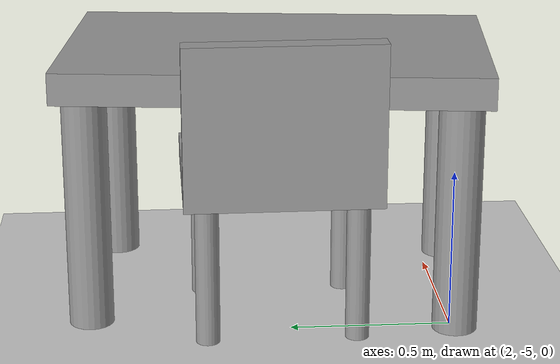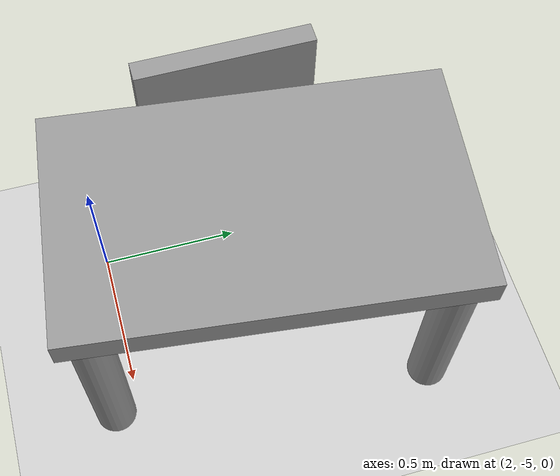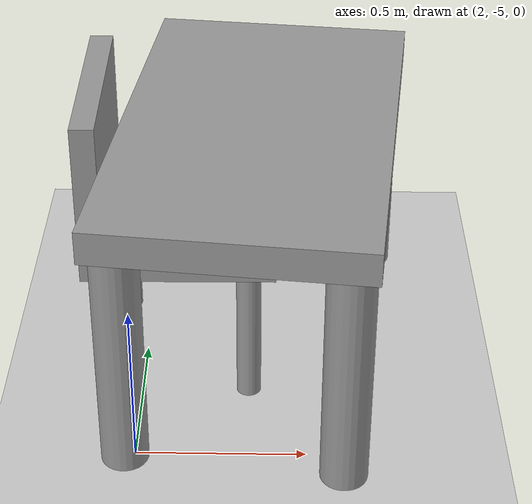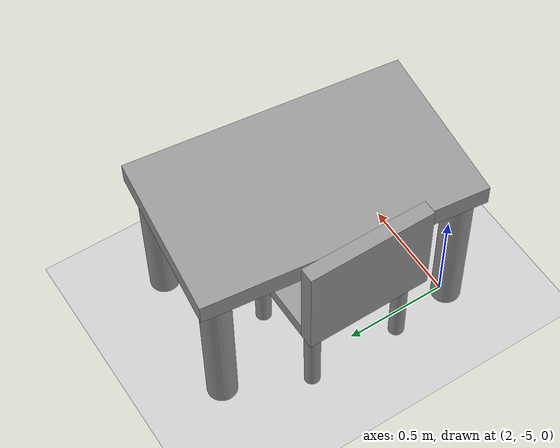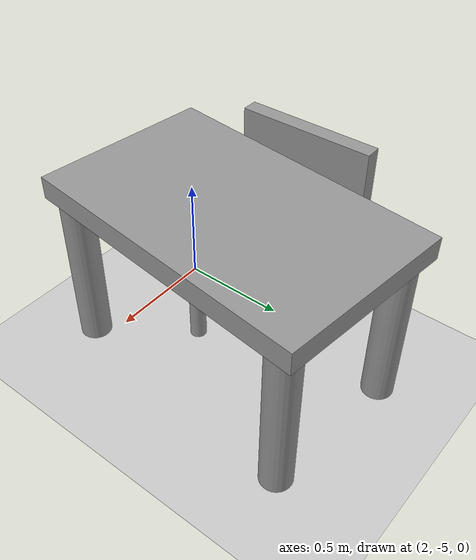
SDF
<sdf version="1.6">
 <world name="default">
  <model name="ground_plane">
   <static>1</static>
   <link name="link">
    <collision name="collision">
     <geometry><plane><normal>0 0 1</normal><size>100 100</size></plane></geometry>
     <surface>
      <contact><collide_bitmask>65535</collide_bitmask></contact>
      <friction><ode><mu>100</mu><mu2>50</mu2></ode></friction>
     </surface>
    </collision>
    <visual name="visual">
     <cast_shadows>0</cast_shadows>
     <geometry><plane><normal>0 0 1</normal><size>100 100</size></plane></geometry>
     <material>
      <script><uri>file://media/materials/scripts/gazebo.material</uri><name>Gazebo/Grey</name></script>
     </material>
    </visual>
   </link>
  </model>
  <model name="table">
   <link name="link_0">
    <inertial>
     <mass>1</mass>
     <inertia>
      <ixx>0.166667</ixx>
      <ixy>0</ixy>
      <ixz>0</ixz>
      <iyy>0.166667</iyy>
      <iyz>0</iyz>
      <izz>0.166667</izz>
     </inertia>
    </inertial>
    <pose>0 0 0.332 0 -0 0</pose>
    <visual name="visual">
     <geometry><box><size>0.8 1.33 0.1</size></box></geometry>
     <material>
      <lighting>1</lighting>
      <script><uri>file://media/materials/scripts/gazebo.material</uri><name>Gazebo/Grey</name></script>
      <shader type="pixel"><normal_map>__default__</normal_map></shader>
      <ambient>0.3 0.3 0.3 1</ambient>
      <diffuse>0.7 0.7 0.7 1</diffuse>
      <specular>0.01 0.01 0.01 1</specular>
      <emissive>0 0 0 1</emissive>
     </material>
    </visual>
    <collision name="collision">
     <geometry><box><size>0.8 1.33 0.1</size></box></geometry>
     <surface>
      <friction>
       <ode><mu>1</mu><mu2>1</mu2><fdir1>0 0 0</fdir1><slip1>0</slip1><slip2>0</slip2></ode>
       <torsional>
        <coefficient>1</coefficient>
        <patch_radius>0</patch_radius>
        <surface_radius>0</surface_radius>
        <use_patch_radius>1</use_patch_radius>
        <ode><slip>0</slip></ode>
       </torsional>
      </friction>
      <bounce><restitution_coefficient>0</restitution_coefficient><threshold>1e+06</threshold></bounce>
      <contact>
       <collide_without_contact>0</collide_without_contact>
       <collide_without_contact_bitmask>1</collide_without_contact_bitmask>
       <collide_bitmask>1</collide_bitmask>
       <ode>
        <soft_cfm>0</soft_cfm>
        <soft_erp>0.2</soft_erp>
        <kp>1e+13</kp>
        <kd>1</kd>
        <max_vel>0.01</max_vel>
        <min_depth>0</min_depth>
       </ode>
       <bullet>
        <split_impulse>1</split_impulse>
        <split_impulse_penetration_threshold>-0.01</split_impulse_penetration_threshold>
        <soft_cfm>0</soft_cfm>
        <soft_erp>0.2</soft_erp>
        <kp>1e+13</kp>
        <kd>1</kd>
       </bullet>
      </contact>
     </surface>
    </collision>
   </link>
   <link name="link_1">
    <inertial>
     <mass>1</mass>
     <inertia><ixx>0.145833</ixx><ixy>0</ixy><ixz>0</ixz><iyy>0.145833</iyy><iyz>0</iyz><izz>0.125</izz></inertia>
    </inertial>
    <pose>-0.32 0.57 -0.083 0 -0 0</pose>
    <visual name="visual">
     <geometry><cylinder><radius>0.07</radius><length>0.73</length></cylinder></geometry>
     <material>
      <lighting>1</lighting>
      <script><uri>file://media/materials/scripts/gazebo.material</uri><name>Gazebo/Grey</name></script>
      <shader type="pixel"><normal_map>__default__</normal_map></shader>
      <ambient>0.3 0.3 0.3 1</ambient>
      <diffuse>0.7 0.7 0.7 1</diffuse>
      <specular>0.01 0.01 0.01 1</specular>
      <emissive>0 0 0 1</emissive>
     </material>
    </visual>
    <collision name="collision">
     <geometry><cylinder><radius>0.07</radius><length>0.73</length></cylinder></geometry>
     <surface>
      <friction>
       <ode><mu>1</mu><mu2>1</mu2><fdir1>0 0 0</fdir1><slip1>0</slip1><slip2>0</slip2></ode>
       <torsional>
        <coefficient>1</coefficient>
        <patch_radius>0</patch_radius>
        <surface_radius>0</surface_radius>
        <use_patch_radius>1</use_patch_radius>
        <ode><slip>0</slip></ode>
       </torsional>
      </friction>
      <bounce><restitution_coefficient>0</restitution_coefficient><threshold>1e+06</threshold></bounce>
      <contact>
       <collide_without_contact>0</collide_without_contact>
       <collide_without_contact_bitmask>1</collide_without_contact_bitmask>
       <collide_bitmask>1</collide_bitmask>
       <ode>
        <soft_cfm>0</soft_cfm>
        <soft_erp>0.2</soft_erp>
        <kp>1e+13</kp>
        <kd>1</kd>
        <max_vel>0.01</max_vel>
        <min_depth>0</min_depth>
       </ode>
       <bullet>
        <split_impulse>1</split_impulse>
        <split_impulse_penetration_threshold>-0.01</split_impulse_penetration_threshold>
        <soft_cfm>0</soft_cfm>
        <soft_erp>0.2</soft_erp>
        <kp>1e+13</kp>
        <kd>1</kd>
       </bullet>
      </contact>
     </surface>
    </collision>
   </link>
   <link name="link_1_clone">
    <inertial>
     <mass>1</mass>
     <inertia><ixx>0.145833</ixx><ixy>0</ixy><ixz>0</ixz><iyy>0.145833</iyy><iyz>0</iyz><izz>0.125</izz></inertia>
    </inertial>
    <pose>-0.32 -0.57 -0.083 0 -0 0</pose>
    <visual name="visual">
     <geometry><cylinder><radius>0.07</radius><length>0.73</length></cylinder></geometry>
     <material>
      <lighting>1</lighting>
      <script><uri>file://media/materials/scripts/gazebo.material</uri><name>Gazebo/Grey</name></script>
      <shader type="pixel"><normal_map>__default__</normal_map></shader>
      <ambient>0.3 0.3 0.3 1</ambient>
      <diffuse>0.7 0.7 0.7 1</diffuse>
      <specular>0.01 0.01 0.01 1</specular>
      <emissive>0 0 0 1</emissive>
     </material>
    </visual>
    <collision name="collision">
     <geometry><cylinder><radius>0.07</radius><length>0.73</length></cylinder></geometry>
     <surface>
      <friction>
       <ode><mu>1</mu><mu2>1</mu2><fdir1>0 0 0</fdir1><slip1>0</slip1><slip2>0</slip2></ode>
       <torsional>
        <coefficient>1</coefficient>
        <patch_radius>0</patch_radius>
        <surface_radius>0</surface_radius>
        <use_patch_radius>1</use_patch_radius>
        <ode><slip>0</slip></ode>
       </torsional>
      </friction>
      <bounce><restitution_coefficient>0</restitution_coefficient><threshold>1e+06</threshold></bounce>
      <contact>
       <collide_without_contact>0</collide_without_contact>
       <collide_without_contact_bitmask>1</collide_without_contact_bitmask>
       <collide_bitmask>1</collide_bitmask>
       <ode>
        <soft_cfm>0</soft_cfm>
        <soft_erp>0.2</soft_erp>
        <kp>1e+13</kp>
        <kd>1</kd>
        <max_vel>0.01</max_vel>
        <min_depth>0</min_depth>
       </ode>
       <bullet>
        <split_impulse>1</split_impulse>
        <split_impulse_penetration_threshold>-0.01</split_impulse_penetration_threshold>
        <soft_cfm>0</soft_cfm>
        <soft_erp>0.2</soft_erp>
        <kp>1e+13</kp>
        <kd>1</kd>
       </bullet>
      </contact>
     </surface>
    </collision>
   </link>
   <link name="link_1_clone_0">
    <inertial>
     <mass>1</mass>
     <inertia><ixx>0.145833</ixx><ixy>0</ixy><ixz>0</ixz><iyy>0.145833</iyy><iyz>0</iyz><izz>0.125</izz></inertia>
    </inertial>
    <pose>0.32 0.57 -0.083 0 -0 0</pose>
    <visual name="visual">
     <geometry><cylinder><radius>0.07</radius><length>0.73</length></cylinder></geometry>
     <material>
      <lighting>1</lighting>
      <script><uri>file://media/materials/scripts/gazebo.material</uri><name>Gazebo/Grey</name></script>
      <shader type="pixel"><normal_map>__default__</normal_map></shader>
      <ambient>0.3 0.3 0.3 1</ambient>
      <diffuse>0.7 0.7 0.7 1</diffuse>
      <specular>0.01 0.01 0.01 1</specular>
      <emissive>0 0 0 1</emissive>
     </material>
    </visual>
    <collision name="collision">
     <geometry><cylinder><radius>0.07</radius><length>0.73</length></cylinder></geometry>
     <surface>
      <friction>
       <ode><mu>1</mu><mu2>1</mu2><fdir1>0 0 0</fdir1><slip1>0</slip1><slip2>0</slip2></ode>
       <torsional>
        <coefficient>1</coefficient>
        <patch_radius>0</patch_radius>
        <surface_radius>0</surface_radius>
        <use_patch_radius>1</use_patch_radius>
        <ode><slip>0</slip></ode>
       </torsional>
      </friction>
      <bounce><restitution_coefficient>0</restitution_coefficient><threshold>1e+06</threshold></bounce>
      <contact>
       <collide_without_contact>0</collide_without_contact>
       <collide_without_contact_bitmask>1</collide_without_contact_bitmask>
       <collide_bitmask>1</collide_bitmask>
       <ode>
        <soft_cfm>0</soft_cfm>
        <soft_erp>0.2</soft_erp>
        <kp>1e+13</kp>
        <kd>1</kd>
        <max_vel>0.01</max_vel>
        <min_depth>0</min_depth>
       </ode>
       <bullet>
        <split_impulse>1</split_impulse>
        <split_impulse_penetration_threshold>-0.01</split_impulse_penetration_threshold>
        <soft_cfm>0</soft_cfm>
        <soft_erp>0.2</soft_erp>
        <kp>1e+13</kp>
        <kd>1</kd>
       </bullet>
      </contact>
     </surface>
    </collision>
   </link>
   <link name="link_1_clone_1">
    <inertial>
     <mass>1</mass>
     <inertia><ixx>0.145833</ixx><ixy>0</ixy><ixz>0</ixz><iyy>0.145833</iyy><iyz>0</iyz><izz>0.125</izz></inertia>
    </inertial>
    <pose>0.32 -0.57 -0.083 0 -0 0</pose>
    <visual name="visual">
     <geometry><cylinder><radius>0.07</radius><length>0.73</length></cylinder></geometry>
     <material>
      <lighting>1</lighting>
      <script><uri>file://media/materials/scripts/gazebo.material</uri><name>Gazebo/Grey</name></script>
      <shader type="pixel"><normal_map>__default__</normal_map></shader>
      <ambient>0.3 0.3 0.3 1</ambient>
      <diffuse>0.7 0.7 0.7 1</diffuse>
      <specular>0.01 0.01 0.01 1</specular>
      <emissive>0 0 0 1</emissive>
     </material>
    </visual>
    <collision name="collision">
     <geometry><cylinder><radius>0.07</radius><length>0.73</length></cylinder></geometry>
     <surface>
      <friction>
       <ode><mu>1</mu><mu2>1</mu2><fdir1>0 0 0</fdir1><slip1>0</slip1><slip2>0</slip2></ode>
       <torsional>
        <coefficient>1</coefficient>
        <patch_radius>0</patch_radius>
        <surface_radius>0</surface_radius>
        <use_patch_radius>1</use_patch_radius>
        <ode><slip>0</slip></ode>
       </torsional>
      </friction>
      <bounce><restitution_coefficient>0</restitution_coefficient><threshold>1e+06</threshold></bounce>
      <contact>
       <collide_without_contact>0</collide_without_contact>
       <collide_without_contact_bitmask>1</collide_without_contact_bitmask>
       <collide_bitmask>1</collide_bitmask>
       <ode>
        <soft_cfm>0</soft_cfm>
        <soft_erp>0.2</soft_erp>
        <kp>1e+13</kp>
        <kd>1</kd>
        <max_vel>0.01</max_vel>
        <min_depth>0</min_depth>
       </ode>
       <bullet>
        <split_impulse>1</split_impulse>
        <split_impulse_penetration_threshold>-0.01</split_impulse_penetration_threshold>
        <soft_cfm>0</soft_cfm>
        <soft_erp>0.2</soft_erp>
        <kp>1e+13</kp>
        <kd>1</kd>
       </bullet>
      </contact>
     </surface>
    </collision>
   </link>
   <joint name="link_0_JOINT_0" type="fixed">
    <parent>link_0</parent>
    <child>link_1_clone</child>
    <physics>
     <ode><limit><cfm>0</cfm><erp>0.2</erp></limit><suspension><cfm>0</cfm><erp>0.2</erp></suspension></ode>
    </physics>
   </joint>
   <joint name="link_0_JOINT_1" type="fixed">
    <parent>link_0</parent>
    <child>link_1</child>
    <physics>
     <ode><limit><cfm>0</cfm><erp>0.2</erp></limit><suspension><cfm>0</cfm><erp>0.2</erp></suspension></ode>
    </physics>
   </joint>
   <joint name="link_0_JOINT_2" type="fixed">
    <parent>link_0</parent>
    <child>link_1_clone_1</child>
    <physics>
     <ode><limit><cfm>0</cfm><erp>0.2</erp></limit><suspension><cfm>0</cfm><erp>0.2</erp></suspension></ode>
    </physics>
   </joint>
   <joint name="link_0_JOINT_3" type="fixed">
    <parent>link_0</parent>
    <child>link_1_clone_0</child>
    <physics>
     <ode><limit><cfm>0</cfm><erp>0.2</erp></limit><suspension><cfm>0</cfm><erp>0.2</erp></suspension></ode>
    </physics>
   </joint>
   <static>0</static>
   <pose>2.35294 -4.47994 0.447999 -2e-06 -1e-06 -0.112671</pose>
  </model>
  <model name="chair_5">
   <link name="link_0">
    <inertial>
     <mass>1</mass>
     <inertia>
      <ixx>0.166667</ixx>
      <ixy>0</ixy>
      <ixz>0</ixz>
      <iyy>0.166667</iyy>
      <iyz>0</iyz>
      <izz>0.166667</izz>
     </inertia>
    </inertial>
    <pose>-0.067504 0 0.137499 0 -0 0</pose>
    <visual name="visual">
     <geometry><box><size>0.5 0.6 0.07</size></box></geometry>
     <material>
      <lighting>1</lighting>
      <script><uri>file://media/materials/scripts/gazebo.material</uri><name>Gazebo/Grey</name></script>
      <shader type="pixel"><normal_map>__default__</normal_map></shader>
      <ambient>0.3 0.3 0.3 1</ambient>
      <diffuse>0.7 0.7 0.7 1</diffuse>
      <specular>0.01 0.01 0.01 1</specular>
      <emissive>0 0 0 1</emissive>
     </material>
    </visual>
    <collision name="collision">
     <geometry><box><size>0.5 0.6 0.07</size></box></geometry>
     <surface>
      <friction>
       <ode><mu>1</mu><mu2>1</mu2><fdir1>0 0 0</fdir1><slip1>0</slip1><slip2>0</slip2></ode>
       <torsional>
        <coefficient>1</coefficient>
        <patch_radius>0</patch_radius>
        <surface_radius>0</surface_radius>
        <use_patch_radius>1</use_patch_radius>
        <ode><slip>0</slip></ode>
       </torsional>
      </friction>
      <bounce><restitution_coefficient>0</restitution_coefficient><threshold>1e+06</threshold></bounce>
      <contact>
       <collide_without_contact>0</collide_without_contact>
       <collide_without_contact_bitmask>1</collide_without_contact_bitmask>
       <collide_bitmask>1</collide_bitmask>
       <ode>
        <soft_cfm>0</soft_cfm>
        <soft_erp>0.2</soft_erp>
        <kp>1e+13</kp>
        <kd>1</kd>
        <max_vel>0.01</max_vel>
        <min_depth>0</min_depth>
       </ode>
       <bullet>
        <split_impulse>1</split_impulse>
        <split_impulse_penetration_threshold>-0.01</split_impulse_penetration_threshold>
        <soft_cfm>0</soft_cfm>
        <soft_erp>0.2</soft_erp>
        <kp>1e+13</kp>
        <kd>1</kd>
       </bullet>
      </contact>
     </surface>
    </collision>
   </link>
   <link name="link_0_clone">
    <inertial>
     <mass>1</mass>
     <inertia>
      <ixx>0.166667</ixx>
      <ixy>0</ixy>
      <ixz>0</ixz>
      <iyy>0.166667</iyy>
      <iyz>0</iyz>
      <izz>0.166667</izz>
     </inertia>
    </inertial>
    <pose>0.21752 0 0.352503 0 1.5707 0</pose>
    <visual name="visual">
     <geometry><box><size>0.5 0.6 0.07</size></box></geometry>
     <material>
      <lighting>1</lighting>
      <script><uri>file://media/materials/scripts/gazebo.material</uri><name>Gazebo/Grey</name></script>
      <shader type="pixel"><normal_map>__default__</normal_map></shader>
      <ambient>0.3 0.3 0.3 1</ambient>
      <diffuse>0.7 0.7 0.7 1</diffuse>
      <specular>0.01 0.01 0.01 1</specular>
      <emissive>0 0 0 1</emissive>
     </material>
    </visual>
    <collision name="collision">
     <geometry><box><size>0.5 0.6 0.07</size></box></geometry>
     <surface>
      <friction>
       <ode><mu>1</mu><mu2>1</mu2><fdir1>0 0 0</fdir1><slip1>0</slip1><slip2>0</slip2></ode>
       <torsional>
        <coefficient>1</coefficient>
        <patch_radius>0</patch_radius>
        <surface_radius>0</surface_radius>
        <use_patch_radius>1</use_patch_radius>
        <ode><slip>0</slip></ode>
       </torsional>
      </friction>
      <bounce><restitution_coefficient>0</restitution_coefficient><threshold>1e+06</threshold></bounce>
      <contact>
       <collide_without_contact>0</collide_without_contact>
       <collide_without_contact_bitmask>1</collide_without_contact_bitmask>
       <collide_bitmask>1</collide_bitmask>
       <ode>
        <soft_cfm>0</soft_cfm>
        <soft_erp>0.2</soft_erp>
        <kp>1e+13</kp>
        <kd>1</kd>
        <max_vel>0.01</max_vel>
        <min_depth>0</min_depth>
       </ode>
       <bullet>
        <split_impulse>1</split_impulse>
        <split_impulse_penetration_threshold>-0.01</split_impulse_penetration_threshold>
        <soft_cfm>0</soft_cfm>
        <soft_erp>0.2</soft_erp>
        <kp>1e+13</kp>
        <kd>1</kd>
       </bullet>
      </contact>
     </surface>
    </collision>
   </link>
   <link name="link_1">
    <inertial>
     <mass>1</mass>
     <inertia><ixx>0.145833</ixx><ixy>0</ixy><ixz>0</ixz><iyy>0.145833</iyy><iyz>0</iyz><izz>0.125</izz></inertia>
    </inertial>
    <pose>-0.237504 -0.23 -0.122501 0 -0 0</pose>
    <visual name="visual">
     <geometry><cylinder><radius>0.037</radius><length>0.45</length></cylinder></geometry>
     <material>
      <lighting>1</lighting>
      <script><uri>file://media/materials/scripts/gazebo.material</uri><name>Gazebo/Grey</name></script>
      <shader type="pixel"><normal_map>__default__</normal_map></shader>
      <ambient>0.3 0.3 0.3 1</ambient>
      <diffuse>0.7 0.7 0.7 1</diffuse>
      <specular>0.01 0.01 0.01 1</specular>
      <emissive>0 0 0 1</emissive>
     </material>
    </visual>
    <collision name="collision">
     <geometry><cylinder><radius>0.037</radius><length>0.45</length></cylinder></geometry>
     <surface>
      <friction>
       <ode><mu>1</mu><mu2>1</mu2><fdir1>0 0 0</fdir1><slip1>0</slip1><slip2>0</slip2></ode>
       <torsional>
        <coefficient>1</coefficient>
        <patch_radius>0</patch_radius>
        <surface_radius>0</surface_radius>
        <use_patch_radius>1</use_patch_radius>
        <ode><slip>0</slip></ode>
       </torsional>
      </friction>
      <bounce><restitution_coefficient>0</restitution_coefficient><threshold>1e+06</threshold></bounce>
      <contact>
       <collide_without_contact>0</collide_without_contact>
       <collide_without_contact_bitmask>1</collide_without_contact_bitmask>
       <collide_bitmask>1</collide_bitmask>
       <ode>
        <soft_cfm>0</soft_cfm>
        <soft_erp>0.2</soft_erp>
        <kp>1e+13</kp>
        <kd>1</kd>
        <max_vel>0.01</max_vel>
        <min_depth>0</min_depth>
       </ode>
       <bullet>
        <split_impulse>1</split_impulse>
        <split_impulse_penetration_threshold>-0.01</split_impulse_penetration_threshold>
        <soft_cfm>0</soft_cfm>
        <soft_erp>0.2</soft_erp>
        <kp>1e+13</kp>
        <kd>1</kd>
       </bullet>
      </contact>
     </surface>
    </collision>
   </link>
   <link name="link_1_clone">
    <inertial>
     <mass>1</mass>
     <inertia><ixx>0.145833</ixx><ixy>0</ixy><ixz>0</ixz><iyy>0.145833</iyy><iyz>0</iyz><izz>0.125</izz></inertia>
    </inertial>
    <pose>-0.237504 0.23 -0.122501 0 -0 0</pose>
    <visual name="visual">
     <geometry><cylinder><radius>0.037</radius><length>0.45</length></cylinder></geometry>
     <material>
      <lighting>1</lighting>
      <script><uri>file://media/materials/scripts/gazebo.material</uri><name>Gazebo/Grey</name></script>
      <shader type="pixel"><normal_map>__default__</normal_map></shader>
      <ambient>0.3 0.3 0.3 1</ambient>
      <diffuse>0.7 0.7 0.7 1</diffuse>
      <specular>0.01 0.01 0.01 1</specular>
      <emissive>0 0 0 1</emissive>
     </material>
    </visual>
    <collision name="collision">
     <geometry><cylinder><radius>0.037</radius><length>0.45</length></cylinder></geometry>
     <surface>
      <friction>
       <ode><mu>1</mu><mu2>1</mu2><fdir1>0 0 0</fdir1><slip1>0</slip1><slip2>0</slip2></ode>
       <torsional>
        <coefficient>1</coefficient>
        <patch_radius>0</patch_radius>
        <surface_radius>0</surface_radius>
        <use_patch_radius>1</use_patch_radius>
        <ode><slip>0</slip></ode>
       </torsional>
      </friction>
      <bounce><restitution_coefficient>0</restitution_coefficient><threshold>1e+06</threshold></bounce>
      <contact>
       <collide_without_contact>0</collide_without_contact>
       <collide_without_contact_bitmask>1</collide_without_contact_bitmask>
       <collide_bitmask>1</collide_bitmask>
       <ode>
        <soft_cfm>0</soft_cfm>
        <soft_erp>0.2</soft_erp>
        <kp>1e+13</kp>
        <kd>1</kd>
        <max_vel>0.01</max_vel>
        <min_depth>0</min_depth>
       </ode>
       <bullet>
        <split_impulse>1</split_impulse>
        <split_impulse_penetration_threshold>-0.01</split_impulse_penetration_threshold>
        <soft_cfm>0</soft_cfm>
        <soft_erp>0.2</soft_erp>
        <kp>1e+13</kp>
        <kd>1</kd>
       </bullet>
      </contact>
     </surface>
    </collision>
   </link>
   <link name="link_1_clone_0">
    <inertial>
     <mass>1</mass>
     <inertia><ixx>0.145833</ixx><ixy>0</ixy><ixz>0</ixz><iyy>0.145833</iyy><iyz>0</iyz><izz>0.125</izz></inertia>
    </inertial>
    <pose>0.162496 0.23 -0.122501 0 -0 0</pose>
    <visual name="visual">
     <geometry><cylinder><radius>0.037</radius><length>0.45</length></cylinder></geometry>
     <material>
      <lighting>1</lighting>
      <script><uri>file://media/materials/scripts/gazebo.material</uri><name>Gazebo/Grey</name></script>
      <shader type="pixel"><normal_map>__default__</normal_map></shader>
      <ambient>0.3 0.3 0.3 1</ambient>
      <diffuse>0.7 0.7 0.7 1</diffuse>
      <specular>0.01 0.01 0.01 1</specular>
      <emissive>0 0 0 1</emissive>
     </material>
    </visual>
    <collision name="collision">
     <geometry><cylinder><radius>0.037</radius><length>0.45</length></cylinder></geometry>
     <surface>
      <friction>
       <ode><mu>1</mu><mu2>1</mu2><fdir1>0 0 0</fdir1><slip1>0</slip1><slip2>0</slip2></ode>
       <torsional>
        <coefficient>1</coefficient>
        <patch_radius>0</patch_radius>
        <surface_radius>0</surface_radius>
        <use_patch_radius>1</use_patch_radius>
        <ode><slip>0</slip></ode>
       </torsional>
      </friction>
      <bounce><restitution_coefficient>0</restitution_coefficient><threshold>1e+06</threshold></bounce>
      <contact>
       <collide_without_contact>0</collide_without_contact>
       <collide_without_contact_bitmask>1</collide_without_contact_bitmask>
       <collide_bitmask>1</collide_bitmask>
       <ode>
        <soft_cfm>0</soft_cfm>
        <soft_erp>0.2</soft_erp>
        <kp>1e+13</kp>
        <kd>1</kd>
        <max_vel>0.01</max_vel>
        <min_depth>0</min_depth>
       </ode>
       <bullet>
        <split_impulse>1</split_impulse>
        <split_impulse_penetration_threshold>-0.01</split_impulse_penetration_threshold>
        <soft_cfm>0</soft_cfm>
        <soft_erp>0.2</soft_erp>
        <kp>1e+13</kp>
        <kd>1</kd>
       </bullet>
      </contact>
     </surface>
    </collision>
   </link>
   <link name="link_1_clone_1">
    <inertial>
     <mass>1</mass>
     <inertia><ixx>0.145833</ixx><ixy>0</ixy><ixz>0</ixz><iyy>0.145833</iyy><iyz>0</iyz><izz>0.125</izz></inertia>
    </inertial>
    <pose>0.162496 -0.23 -0.122501 0 -0 0</pose>
    <visual name="visual">
     <geometry><cylinder><radius>0.037</radius><length>0.45</length></cylinder></geometry>
     <material>
      <lighting>1</lighting>
      <script><uri>file://media/materials/scripts/gazebo.material</uri><name>Gazebo/Grey</name></script>
      <shader type="pixel"><normal_map>__default__</normal_map></shader>
      <ambient>0.3 0.3 0.3 1</ambient>
      <diffuse>0.7 0.7 0.7 1</diffuse>
      <specular>0.01 0.01 0.01 1</specular>
      <emissive>0 0 0 1</emissive>
     </material>
    </visual>
    <collision name="collision">
     <geometry><cylinder><radius>0.037</radius><length>0.45</length></cylinder></geometry>
     <surface>
      <friction>
       <ode><mu>1</mu><mu2>1</mu2><fdir1>0 0 0</fdir1><slip1>0</slip1><slip2>0</slip2></ode>
       <torsional>
        <coefficient>1</coefficient>
        <patch_radius>0</patch_radius>
        <surface_radius>0</surface_radius>
        <use_patch_radius>1</use_patch_radius>
        <ode><slip>0</slip></ode>
       </torsional>
      </friction>
      <bounce><restitution_coefficient>0</restitution_coefficient><threshold>1e+06</threshold></bounce>
      <contact>
       <collide_without_contact>0</collide_without_contact>
       <collide_without_contact_bitmask>1</collide_without_contact_bitmask>
       <collide_bitmask>1</collide_bitmask>
       <ode>
        <soft_cfm>0</soft_cfm>
        <soft_erp>0.2</soft_erp>
        <kp>1e+13</kp>
        <kd>1</kd>
        <max_vel>0.01</max_vel>
        <min_depth>0</min_depth>
       </ode>
       <bullet>
        <split_impulse>1</split_impulse>
        <split_impulse_penetration_threshold>-0.01</split_impulse_penetration_threshold>
        <soft_cfm>0</soft_cfm>
        <soft_erp>0.2</soft_erp>
        <kp>1e+13</kp>
        <kd>1</kd>
       </bullet>
      </contact>
     </surface>
    </collision>
   </link>
   <joint name="link_0_JOINT_0" type="fixed">
    <parent>link_0</parent>
    <child>link_0_clone</child>
    <physics>
     <ode><limit><cfm>0</cfm><erp>0.2</erp></limit><suspension><cfm>0</cfm><erp>0.2</erp></suspension></ode>
    </physics>
   </joint>
   <joint name="link_0_JOINT_1" type="fixed">
    <parent>link_0</parent>
    <child>link_1</child>
    <physics>
     <ode><limit><cfm>0</cfm><erp>0.2</erp></limit><suspension><cfm>0</cfm><erp>0.2</erp></suspension></ode>
    </physics>
   </joint>
   <joint name="link_0_JOINT_2" type="fixed">
    <parent>link_0</parent>
    <child>link_1_clone_0</child>
    <physics>
     <ode><limit><cfm>0</cfm><erp>0.2</erp></limit><suspension><cfm>0</cfm><erp>0.2</erp></suspension></ode>
    </physics>
   </joint>
   <joint name="link_0_JOINT_3" type="fixed">
    <parent>link_0</parent>
    <child>link_1_clone</child>
    <physics>
     <ode><limit><cfm>0</cfm><erp>0.2</erp></limit><suspension><cfm>0</cfm><erp>0.2</erp></suspension></ode>
    </physics>
   </joint>
   <joint name="link_0_JOINT_4" type="fixed">
    <parent>link_0</parent>
    <child>link_1_clone_1</child>
    <physics>
     <ode><limit><cfm>0</cfm><erp>0.2</erp></limit><suspension><cfm>0</cfm><erp>0.2</erp></suspension></ode>
    </physics>
   </joint>
   <static>0</static>
   <pose>2.08764 -4.46744 0.3475 2e-06 2e-06 -3.1333</pose>
  </model>
 </world>
</sdf>
